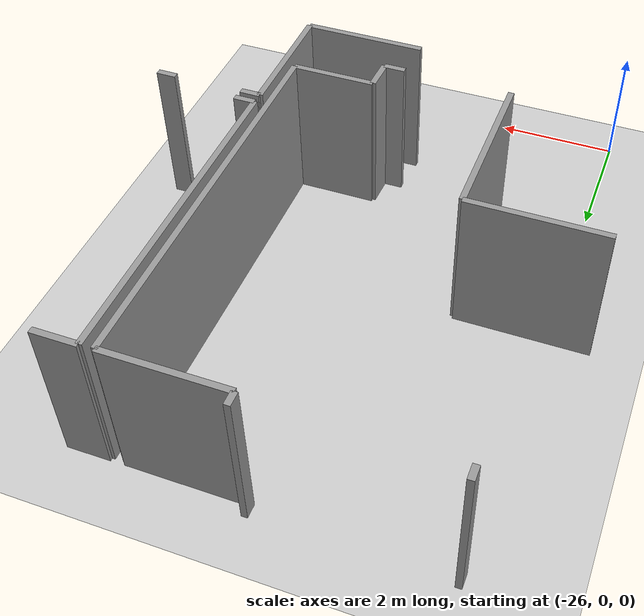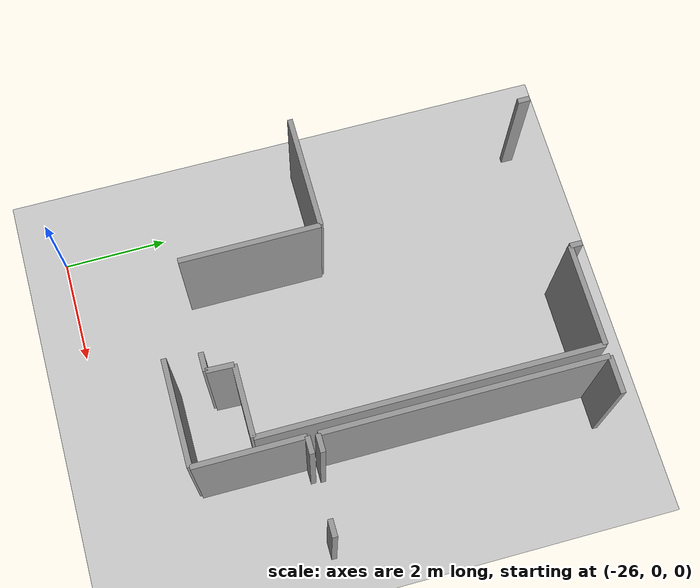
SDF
<sdf version="1.6">
 <world name="default">
  <model name="ground_plane">
   <static>1</static>
   <link name="link">
    <collision name="collision">
     <geometry><plane><normal>0 0 1</normal><size>100 100</size></plane></geometry>
     <surface><friction><ode><mu>100</mu><mu2>50</mu2></ode></friction></surface>
    </collision>
    <visual name="visual">
     <cast_shadows>0</cast_shadows>
     <geometry><plane><normal>0 0 1</normal><size>100 100</size></plane></geometry>
     <material>
      <script><uri>file://media/materials/scripts/gazebo.material</uri><name>Gazebo/Grey</name></script>
     </material>
    </visual>
   </link>
  </model>
  <model name="0510034841_A-40">
   <static>1</static>
   <link name="Wall_9">
    <collision name="Wall_9_Collision">
     <geometry><box><size>0.348456382655 0.1 2.5</size></box></geometry>
     <pose>0.174228191327 0 1.25 0 0 0</pose>
    </collision>
    <visual name="Wall_9_Visual">
     <pose>0.174228191327 0 1.25 0 0 0</pose>
     <geometry><box><size>0.348456382655 0.1 2.5</size></box></geometry>
     <material>
      <script><uri>file://media/materials/scripts/gazebo.material</uri><name>Gazebo/Grey</name></script>
      <ambient>1 1 1 1</ambient>
     </material>
    </visual>
    <pose>11.4282268711 -7.12298161877 0 0 0 3.14159265359</pose>
   </link>
   <link name="Wall_10">
    <collision name="Wall_10_Collision">
     <geometry><box><size>2.65791611658 0.1 2.5</size></box></geometry>
     <pose>1.32895805829 0 1.25 0 0 0</pose>
    </collision>
    <visual name="Wall_10_Visual">
     <pose>1.32895805829 0 1.25 0 0 0</pose>
     <geometry><box><size>2.65791611658 0.1 2.5</size></box></geometry>
     <material>
      <script><uri>file://media/materials/scripts/gazebo.material</uri><name>Gazebo/Grey</name></script>
      <ambient>1 1 1 1</ambient>
     </material>
    </visual>
    <pose>9.30194475475 -7.12298161877 0 0 0 1.57079632679</pose>
   </link>
   <link name="Wall_11">
    <collision name="Wall_11_Collision">
     <geometry><box><size>2.20346298365 0.1 2.5</size></box></geometry>
     <pose>1.10173149182 0 1.25 0 0 0</pose>
    </collision>
    <visual name="Wall_11_Visual">
     <pose>1.10173149182 0 1.25 0 0 0</pose>
     <geometry><box><size>2.20346298365 0.1 2.5</size></box></geometry>
     <material>
      <script><uri>file://media/materials/scripts/gazebo.material</uri><name>Gazebo/Grey</name></script>
      <ambient>1 1 1 1</ambient>
     </material>
    </visual>
    <pose>9.30194475475 -4.46506550218 0 0 0 3.14159265359</pose>
   </link>
   <link name="Wall_15">
    <collision name="Wall_15_Collision">
     <geometry><box><size>0.23052706408 0.1 2.5</size></box></geometry>
     <pose>0.11526353204 0 1.25 0 0 0</pose>
    </collision>
    <visual name="Wall_15_Visual">
     <pose>0.11526353204 0 1.25 0 0 0</pose>
     <geometry><box><size>0.23052706408 0.1 2.5</size></box></geometry>
     <material>
      <script><uri>file://media/materials/scripts/gazebo.material</uri><name>Gazebo/Grey</name></script>
      <ambient>1 1 1 1</ambient>
     </material>
    </visual>
    <pose>7.84629836498 -0.247029552148 0 0 0 1.57079632679</pose>
   </link>
   <link name="Wall_16">
    <collision name="Wall_16_Collision">
     <geometry><box><size>0.225068548797 0.1 2.5</size></box></geometry>
     <pose>0.112534274398 0 1.25 0 0 0</pose>
    </collision>
    <visual name="Wall_16_Visual">
     <pose>0.112534274398 0 1.25 0 0 0</pose>
     <geometry><box><size>0.225068548797 0.1 2.5</size></box></geometry>
     <material>
      <script><uri>file://media/materials/scripts/gazebo.material</uri><name>Gazebo/Grey</name></script>
      <ambient>1 1 1 1</ambient>
     </material>
    </visual>
    <pose>10.8703158322 -0.0165024880674 0 0 0 -1.57079632679</pose>
   </link>
   <link name="Wall_17">
    <collision name="Wall_17_Collision">
     <geometry><box><size>1.9292677973 0.1 2.5</size></box></geometry>
     <pose>0.964633898649 0 1.25 0 0 0</pose>
    </collision>
    <visual name="Wall_17_Visual">
     <pose>0.964633898649 0 1.25 0 0 0</pose>
     <geometry><box><size>1.9292677973 0.1 2.5</size></box></geometry>
     <material>
      <script><uri>file://media/materials/scripts/gazebo.material</uri><name>Gazebo/Grey</name></script>
      <ambient>1 1 1 1</ambient>
     </material>
    </visual>
    <pose>10.8703158322 -0.241571036864 0 0 0 0.0</pose>
   </link>
   <link name="Wall_18">
    <collision name="Wall_18_Collision">
     <geometry><box><size>6.36602518534 0.1 2.5</size></box></geometry>
     <pose>3.18301259267 0 1.25 0 0 0</pose>
    </collision>
    <visual name="Wall_18_Visual">
     <pose>3.18301259267 0 1.25 0 0 0</pose>
     <geometry><box><size>6.36602518534 0.1 2.5</size></box></geometry>
     <material>
      <script><uri>file://media/materials/scripts/gazebo.material</uri><name>Gazebo/Grey</name></script>
      <ambient>1 1 1 1</ambient>
     </material>
    </visual>
    <pose>12.7995836295 -0.241571036864 0 0 0 -1.57079632679</pose>
   </link>
   <link name="Wall_19">
    <collision name="Wall_19_Collision">
     <geometry><box><size>1.35333096375 0.1 2.5</size></box></geometry>
     <pose>0.676665481873 0 1.25 0 0 0</pose>
    </collision>
    <visual name="Wall_19_Visual">
     <pose>0.676665481873 0 1.25 0 0 0</pose>
     <geometry><box><size>1.35333096375 0.1 2.5</size></box></geometry>
     <material>
      <script><uri>file://media/materials/scripts/gazebo.material</uri><name>Gazebo/Grey</name></script>
      <ambient>1 1 1 1</ambient>
     </material>
    </visual>
    <pose>12.7995836295 -6.6075962222 0 0 0 3.14159265359</pose>
   </link>
   <link name="Wall_20">
    <collision name="Wall_20_Collision">
     <geometry><box><size>0.515700529637 0.1 2.5</size></box></geometry>
     <pose>0.257850264819 0 1.25 0 0 0</pose>
    </collision>
    <visual name="Wall_20_Visual">
     <pose>0.257850264819 0 1.25 0 0 0</pose>
     <geometry><box><size>0.515700529637 0.1 2.5</size></box></geometry>
     <material>
      <script><uri>file://media/materials/scripts/gazebo.material</uri><name>Gazebo/Grey</name></script>
      <ambient>1 1 1 1</ambient>
     </material>
    </visual>
    <pose>11.4462526658 -6.6075962222 0 0 0 -1.6057574452</pose>
   </link>
   <link name="Wall_51">
    <collision name="Wall_51_Collision">
     <geometry><box><size>1.99489692292 0.1 2.5</size></box></geometry>
     <pose>0.99744846146 0 1.25 0 0 0</pose>
    </collision>
    <visual name="Wall_51_Visual">
     <pose>0.99744846146 0 1.25 0 0 0</pose>
     <geometry><box><size>1.99489692292 0.1 2.5</size></box></geometry>
     <material>
      <script><uri>file://media/materials/scripts/gazebo.material</uri><name>Gazebo/Grey</name></script>
      <ambient>1 1 1 1</ambient>
     </material>
    </visual>
    <pose>11.0213770692 -7.77863816391 0 0 0 0.0</pose>
   </link>
   <link name="Wall_52">
    <collision name="Wall_52_Collision">
     <geometry><box><size>2.06991977252 0.1 2.5</size></box></geometry>
     <pose>1.03495988626 0 1.25 0 0 0</pose>
    </collision>
    <visual name="Wall_52_Visual">
     <pose>1.03495988626 0 1.25 0 0 0</pose>
     <geometry><box><size>2.06991977252 0.1 2.5</size></box></geometry>
     <material>
      <script><uri>file://media/materials/scripts/gazebo.material</uri><name>Gazebo/Grey</name></script>
      <ambient>1 1 1 1</ambient>
     </material>
    </visual>
    <pose>13.0162739921 -7.77863816391 0 0 0 1.57079632679</pose>
   </link>
   <link name="Wall_53">
    <collision name="Wall_53_Collision">
     <geometry><box><size>0.325479841576 0.1 2.5</size></box></geometry>
     <pose>0.162739920788 0 1.25 0 0 0</pose>
    </collision>
    <visual name="Wall_53_Visual">
     <pose>0.162739920788 0 1.25 0 0 0</pose>
     <geometry><box><size>0.325479841576 0.1 2.5</size></box></geometry>
     <material>
      <script><uri>file://media/materials/scripts/gazebo.material</uri><name>Gazebo/Grey</name></script>
      <ambient>1 1 1 1</ambient>
     </material>
    </visual>
    <pose>13.0162739921 -5.70871839139 0 0 0 0.0</pose>
   </link>
   <link name="Wall_54">
    <collision name="Wall_54_Collision">
     <geometry><box><size>0.321798517315 0.1 2.5</size></box></geometry>
     <pose>0.160899258657 0 1.25 0 0 0</pose>
    </collision>
    <visual name="Wall_54_Visual">
     <pose>0.160899258657 0 1.25 0 0 0</pose>
     <geometry><box><size>0.321798517315 0.1 2.5</size></box></geometry>
     <material>
      <script><uri>file://media/materials/scripts/gazebo.material</uri><name>Gazebo/Grey</name></script>
      <ambient>1 1 1 1</ambient>
     </material>
    </visual>
    <pose>14.4907078298 -5.70871839139 0 0 0 0.0</pose>
   </link>
   <link name="Wall_63">
    <collision name="Wall_63_Collision">
     <geometry><box><size>0.342109271859 0.1 2.5</size></box></geometry>
     <pose>0.17105463593 0 1.25 0 0 0</pose>
    </collision>
    <visual name="Wall_63_Visual">
     <pose>0.17105463593 0 1.25 0 0 0</pose>
     <geometry><box><size>0.342109271859 0.1 2.5</size></box></geometry>
     <material>
      <script><uri>file://media/materials/scripts/gazebo.material</uri><name>Gazebo/Grey</name></script>
      <ambient>1 1 1 1</ambient>
     </material>
    </visual>
    <pose>13.3625723571 -5.52198639179 0 0 0 3.14159265359</pose>
   </link>
   <link name="Wall_64">
    <collision name="Wall_64_Collision">
     <geometry><box><size>5.28625469686 0.1 2.5</size></box></geometry>
     <pose>2.64312734843 0 1.25 0 0 0</pose>
    </collision>
    <visual name="Wall_64_Visual">
     <pose>2.64312734843 0 1.25 0 0 0</pose>
     <geometry><box><size>5.28625469686 0.1 2.5</size></box></geometry>
     <material>
      <script><uri>file://media/materials/scripts/gazebo.material</uri><name>Gazebo/Grey</name></script>
      <ambient>1 1 1 1</ambient>
     </material>
    </visual>
    <pose>13.0204630852 -5.52198639179 0 0 0 1.57079632679</pose>
   </link>
   <link name="Wall_65">
    <collision name="Wall_65_Collision">
     <geometry><box><size>0.700340205139 0.1 2.5</size></box></geometry>
     <pose>0.350170102569 0 1.25 0 0 0</pose>
    </collision>
    <visual name="Wall_65_Visual">
     <pose>0.350170102569 0 1.25 0 0 0</pose>
     <geometry><box><size>0.700340205139 0.1 2.5</size></box></geometry>
     <material>
      <script><uri>file://media/materials/scripts/gazebo.material</uri><name>Gazebo/Grey</name></script>
      <ambient>1 1 1 1</ambient>
     </material>
    </visual>
    <pose>13.0204630852 -0.235731694932 0 0 0 0.0</pose>
   </link>
   <pose>-33.8 9.33765613893 0 0 0 0</pose>
  </model>
 </world>
</sdf>
